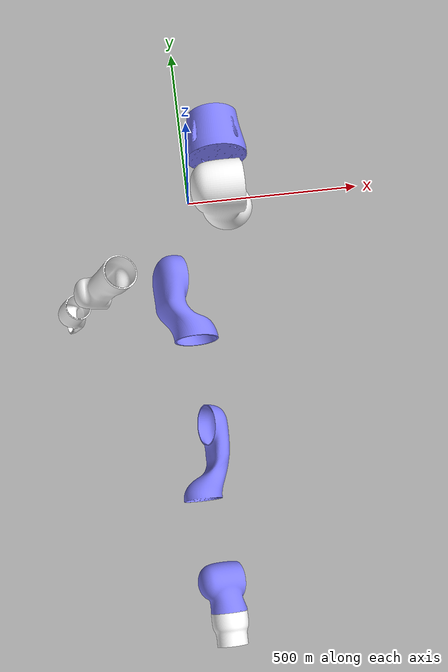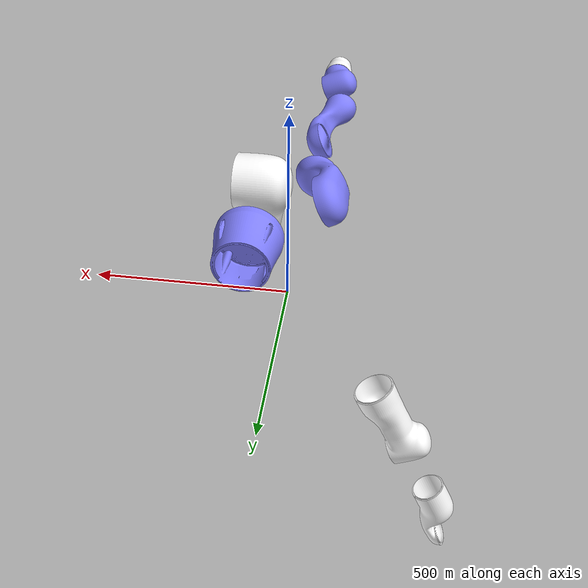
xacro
<?xml version="1.0"?>
<robot name="optimo"
    xmlns:xacro="http://www.ros.org/wiki/xacro">

    <!-- Constants for robot dimensions -->
    <xacro:property name="PI" value="3.1415926535897931" />
    <xacro:property name="DtR" value=".01745329251" />

    <material name="white">
        <color rgba="1.0 1.0 1.0 1.0"/>
    </material>

    <material name="blue">
        <color rgba="0.5 0.5 1 1.0"/>
    </material>

    <!-- Used for fixing robot to Gazebo 'base_link' -->
    <link name="world" />

    <joint name="fixed" type="fixed">
        <parent link="world" />
        <child link="link0" />
        <!-- .27 puts the link on the floor -->
        <origin xyz="0 0 1.27" rpy="0 0 0" />
    </joint>

    <!-- Base Link -->
    <link name="link0">
        <visual>
            <geometry>
                <mesh filename="package://optimo_description/meshes/link0.stl" />
            </geometry>
            <material name="blue"/>
        </visual>
        <collision>
            <geometry>
                <mesh filename="package://optimo_description/meshes/col0.stl" />
            </geometry>
        </collision>
        <inertial>            <!-- Doesn't matter, just placeholder values -->
            <origin xyz="0 0 0" />
            <mass value="1" />
            <inertia ixx="0" ixy="0.0" ixz="0.0" iyy="0" iyz="0.0" izz="0" />
        </inertial>
    </link>
    <link name="link1" />
    <joint name="joint1" type="revolute">
        <origin xyz="0 0 0" rpy="0 0 0" />
        <parent link="link0" />
        <child link="link1" />
        <axis xyz="0 0 1" />
        <limit lower="${DtR*-164}" upper="${DtR*167}" effort="79" velocity="10" />
        <dynamics damping="1" friction="0.1"/>
    </joint>
    <joint name="joint1_passive" type="fixed">
        <origin xyz="0 0 0" rpy="${PI/2} 0 0" />
        <parent link="link1" />
        <child link="link1_passive" />
    </joint>
    <link name="link1_passive">
        <visual>
            <geometry>
                <mesh filename="package://optimo_description/meshes/link1.stl" />
            </geometry>
            <material name="white"/>
        </visual>
        <collision>
            <geometry>
                <mesh filename="package://optimo_description/meshes/col1.stl" />
            </geometry>
        </collision>
        <inertial>
            <origin xyz="0 -0.01635 0.01549" />
            <mass value="4.152" />
            <inertia ixx="0.01" ixy="0.000017" ixz="-.00001" iyy="0.007494" iyz="0.0000213" izz="0.009939" />
        </inertial>
    </link>
    <link name="link2" />
    <joint name="joint2" type="revolute">
        <origin xyz="0 0 0" rpy="0 0 0" />
        <parent link="link1_passive" />
        <child link="link2" />
        <axis xyz="0 0 1" />
        <limit lower="${DtR*60}" upper="${DtR*250}" effort="95" velocity="10" />
        <dynamics damping="1" friction="0.1"/>
    </joint>
    <joint name="joint2_passive" type="fixed">
        <origin xyz="0 0 0" rpy="${PI/2} 0 0" />
        <parent link="link2" />
        <child link="link2_passive" />
    </joint>
    <link name="link2_passive">
        <visual>
            <geometry>
                <mesh filename="package://optimo_description/meshes/link2.stl" />
            </geometry>
            <material name="blue"/>
        </visual>
        <collision>
            <geometry>
                <mesh filename="package://optimo_description/meshes/col2.stl" />
            </geometry>
        </collision>
        <inertial>
            <origin xyz="0 -0.05063 0.05677" />
            <mass value="1.72" />
            <inertia ixx="0.005694" ixy="0" ixz="0" iyy="0.005902" iyz="0.001353" izz="0.002415" />
        </inertial>
    </link>
    <link name="link3" />
    <joint name="joint3" type="revolute">
        <origin xyz="0 0 0.4" rpy="0 0 0" />
        <parent link="link2_passive" />
        <child link="link3" />
        <axis xyz="0 0 1" />
        <limit lower="${DtR*-167}" upper="${DtR*163}" effort="32" velocity="10" />
        <dynamics damping="1" friction="0.1"/>
    </joint>
    <joint name="joint3_passive" type="fixed">
        <origin xyz="0 0 0" rpy="-${PI/2} 0 0" />
        <parent link="link3" />
        <child link="link3_passive" />
    </joint>
    <link name="link3_passive">
        <visual>
            <geometry>
                <mesh filename="package://optimo_description/meshes/link3.stl" />
            </geometry>
            <material name="white"/>
        </visual>
        <collision>
            <geometry>
                <mesh filename="package://optimo_description/meshes/col3.stl" />
            </geometry>
        </collision>
        <inertial>            <!-- Inertia values taken from yaml, but these seem like they cannot be
            accurate...-->
            <origin xyz="-0.000039 .098 0" />
            <mass value="4.310" />
            <inertia ixx="0.012989" ixy="-0.000015" ixz="-.000003" iyy="0.002584" iyz="0.000632" izz="0.01305" />
        </inertial>
    </link>
    <link name="link4" />
    <joint name="joint4" type="revolute">
        <origin xyz="0 0 0" rpy="0 0 0" />
        <parent link="link3_passive" />
        <child link="link4" />
        <axis xyz="0 0 1" />
        <limit lower="${DtR*-145}" upper="${DtR*145}" effort="40" velocity="10" />
        <dynamics damping="1" friction="0.1"/>
    </joint>
    <joint name="joint4_passive" type="fixed">
        <origin xyz="0 0 0" rpy="${PI/2} 0 0" />
        <parent link="link4" />
        <child link="link4_passive" />
    </joint>
    <link name="link4_passive">
        <visual>
            <geometry>
                <mesh filename="package://optimo_description/meshes/link4.stl" />
            </geometry>
            <material name="blue"/>
        </visual>
        <collision>
            <geometry>
                <mesh filename="package://optimo_description/meshes/col4.stl" />
            </geometry>
        </collision>
        <inertial>
            <origin xyz="-.00001 0.048852 0.0688" />
            <mass value="1.09" />
            <inertia ixx="0.033673" ixy="-.00046473" ixz="0" iyy="0.001089" iyz="0.000095" izz="0.033877" />
        </inertial>
    </link>
    <link name="link5" />
    <joint name="joint5" type="revolute">
        <origin xyz="0 0 0.4" rpy="0 0 0" />
        <parent link="link4_passive" />
        <child link="link5" />
        <axis xyz="0 0 1" />
        <limit lower="${DtR*-170}" upper="${DtR*170}" effort="15" velocity="10" />
        <dynamics damping="1" friction="0.1"/>
    </joint>
    <joint name="joint5_passive" type="fixed">
        <origin xyz="0 0 0" rpy="-${PI/2} 0 0" />
        <parent link="link5" />
        <child link="link5_passive" />
    </joint>
    <link name="link5_passive">
        <visual>
            <geometry>
                <mesh filename="package://optimo_description/meshes/link5.stl" />
            </geometry>
            <material name="white"/>
        </visual>
        <collision>
            <geometry>
                <mesh filename="package://optimo_description/meshes/col5.stl" />
            </geometry>
        </collision>
        <inertial>
            <origin xyz=".001262 0.085 0.008" />
            <mass value="2.23" />
            <inertia ixx="0.000932" ixy="0" ixz="0" iyy="0.000802" iyz="-0.000030" izz="0.000733" />
        </inertial>
    </link>
    <link name="link6" />
    <joint name="joint6" type="revolute">
        <origin xyz="0 0 0" rpy="0 0 0" />
        <parent link="link5_passive" />
        <child link="link6" />
        <axis xyz="0 0 1" />
        <limit lower="${DtR*-120}" upper="${DtR*120}" effort="15" velocity="10" />
        <dynamics damping="1" friction="0.1"/>
    </joint>
    <joint name="joint6_passive" type="fixed">
        <origin xyz="0 0 0" rpy="${PI/2} 0 0" />
        <parent link="link6" />
        <child link="link6_passive" />
    </joint>
    <link name="link6_passive">
        <visual>
            <geometry>
                <mesh filename="package://optimo_description/meshes/link6.stl" />
            </geometry>
            <material name="blue"/>
        </visual>
        <collision>
            <geometry>
                <mesh filename="package://optimo_description/meshes/col6.stl" />
            </geometry>
        </collision>
        <inertial>
            <origin xyz="0 -0.00007 0.010855" />
            <mass value="1.138" />
            <inertia ixx="0.000932" ixy="0" ixz="0" iyy="0.000802" iyz="-0.000030" izz="0.0007325" />
        </inertial>
    </link>
    <link name="link7" />
    <joint name="joint7" type="revolute">
        <origin xyz="0 0 0" rpy="0 0 0" />
        <parent link="link6_passive" />
        <child link="link7" />
        <axis xyz="0 0 1" />
        <limit lower="${DtR*-152}" upper="${DtR*188}" effort="15" velocity="10" />
        <dynamics damping="1" friction="0.1"/>
    </joint>
    <joint name="joint7_passive" type="fixed">
        <origin xyz="0 0 0" rpy="0 0 0" />
        <parent link="link7" />
        <child link="link7_passive" />
    </joint>
    <link name="link7_passive">
        <visual>
            <geometry>
                <mesh filename="package://optimo_description/meshes/link7.stl" />
            </geometry>
            <material name="white"/>
        </visual>
        <collision>
            <geometry>
                <mesh filename="package://optimo_description/meshes/col7.stl" />
            </geometry>
        </collision>
        <inertial>
            <origin xyz="-.015 0 0.14" />
            <mass value="1" />
            <inertia ixx="0.005541" ixy=".000045" ixz="0.000077" iyy="0.004779" iyz="0.000043" izz="0.001723" />
        </inertial>
    </link>

    <!-- Gazebo stuff-->
    <ros2_control name="IgnitionSystem" type="system">
        <hardware>
            <plugin>ign_ros2_control/IgnitionSystem</plugin>
        </hardware>
        <joint name="joint1">
            <command_interface name="effort">
                <param name="min">-150</param>
                <param name="max">150</param>
            </command_interface>
            <state_interface name="position"/>
            <state_interface name="velocity" />
            <state_interface name="effort" />
        </joint>
        <joint name="joint2">
            <command_interface name="effort">
                <param name="min">-150</param>
                <param name="max">150</param>
            </command_interface>
            <state_interface name="position">
            </state_interface>
            <state_interface name="velocity" />
            <state_interface name="effort" />
        </joint>
        <joint name="joint3">
            <command_interface name="effort">
                <param name="min">-150</param>
                <param name="max">150</param>
            </command_interface>
            <state_interface name="position"/>
            <state_interface name="velocity" />
            <state_interface name="effort" />
        </joint>
        <joint name="joint4">
            <command_interface name="effort">
                <param name="min">-150</param>
                <param name="max">150</param>
            </command_interface>
            <state_interface name="position"/>
            <state_interface name="velocity" />
            <state_interface name="effort" />
        </joint>
        <joint name="joint5">
            <command_interface name="effort">
                <param name="min">-150</param>
                <param name="max">150</param>
            </command_interface>
            <state_interface name="position"/>
            <state_interface name="velocity" />
            <state_interface name="effort" />
        </joint>
        <joint name="joint6">
            <command_interface name="effort">
                <param name="min">-150</param>
                <param name="max">150</param>
            </command_interface>
            <state_interface name="position"/>
            <state_interface name="velocity" />
            <state_interface name="effort" />
        </joint>
        <joint name="joint7">
            <command_interface name="effort">
                <param name="min">-150</param>
                <param name="max">150</param>
            </command_interface>
            <state_interface name="position"/>
            <state_interface name="velocity" />
            <state_interface name="effort" />
        </joint>
    </ros2_control>

    <gazebo>
        <!-- Joint state publisher -->
        <plugin filename="ign_ros2_control-system" name="ign_ros2_control::IgnitionROS2ControlPlugin">
            <!-- need to make $(find optimo_sim) work again...-->
            <parameters>$(find plato_bringup)/config/optimo_effort_controllers.yaml</parameters>
        </plugin>
        <plugin filename="MechanicalStop" name="optimo::MechanicalStop">
            <init_pos>0 3.3 0 -2.36 0 -1.13 1.57</init_pos>
        </plugin>
    </gazebo>
</robot>
